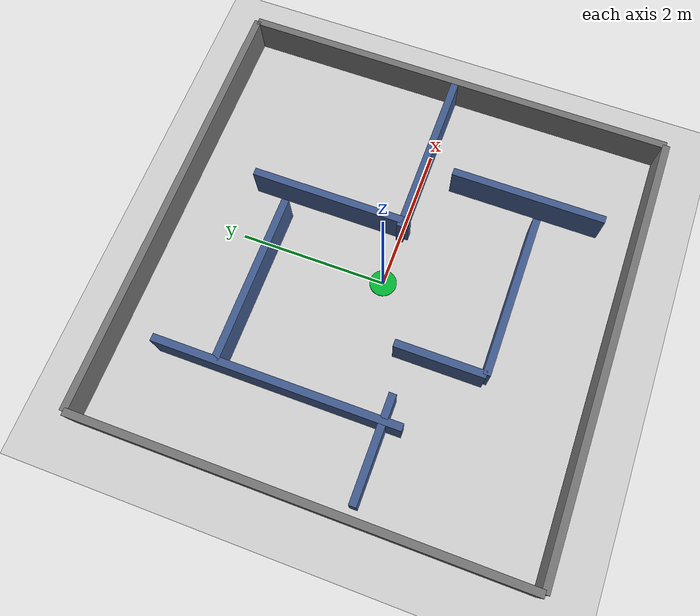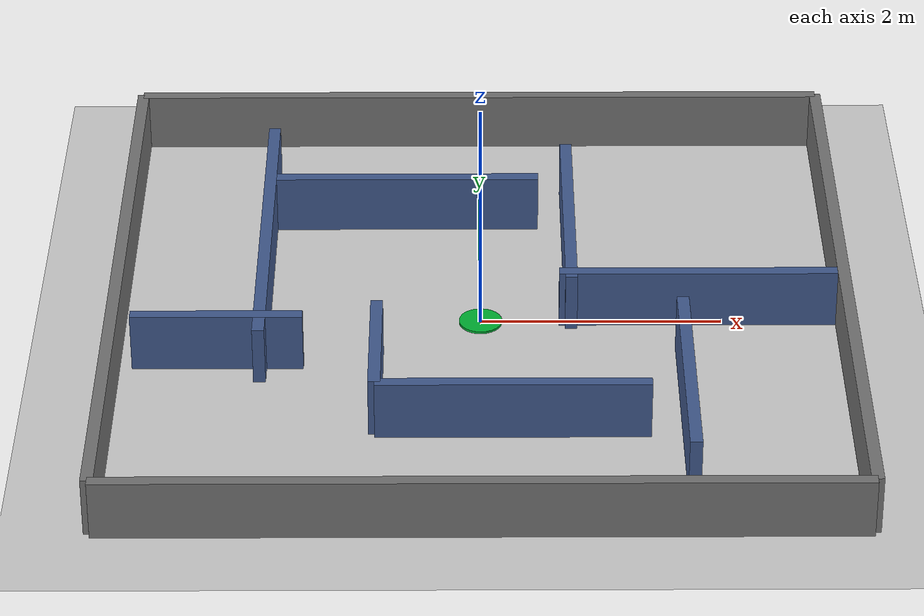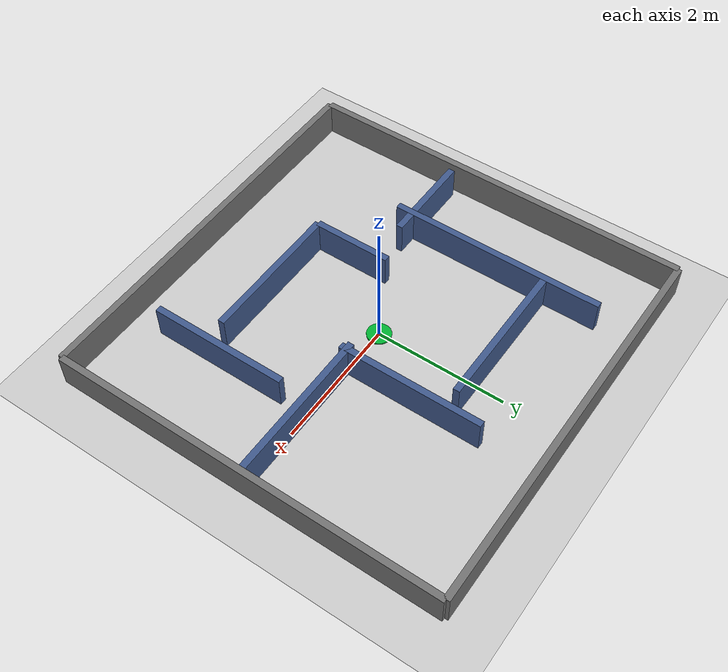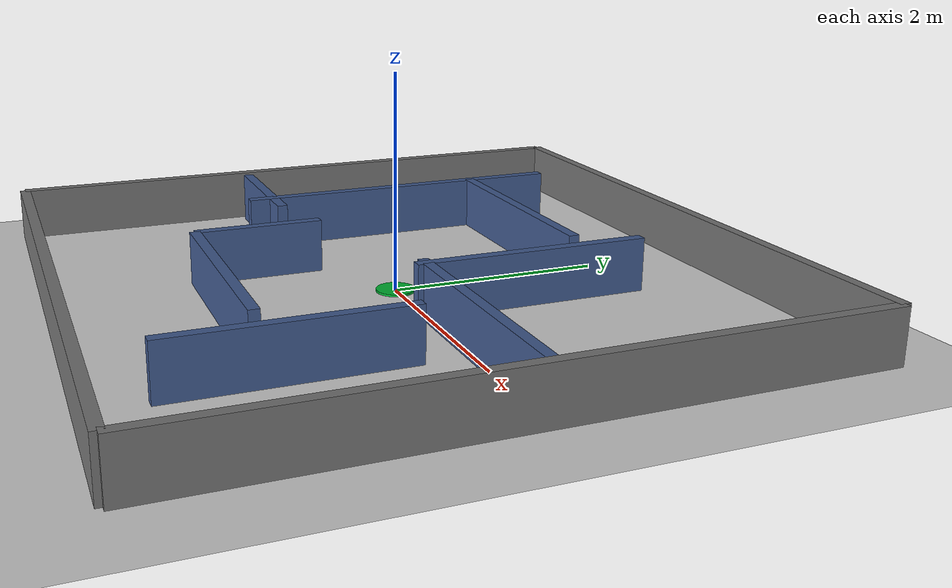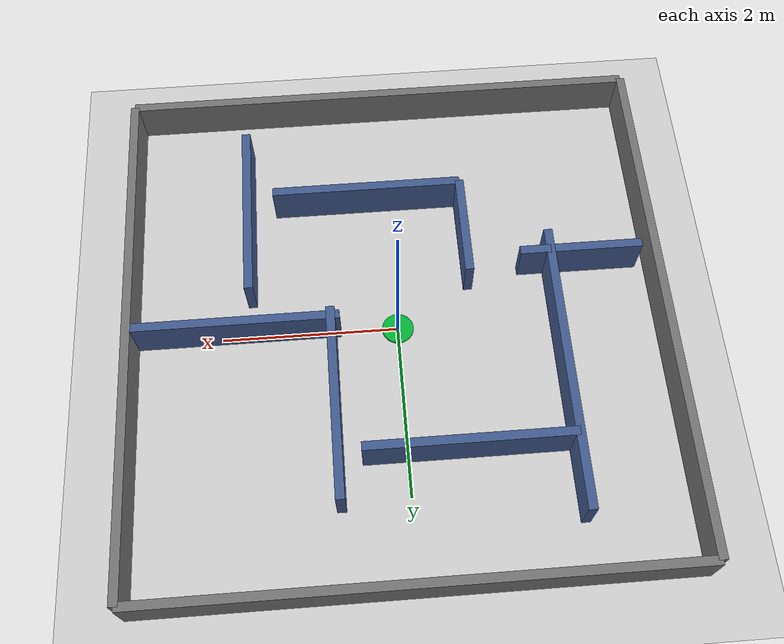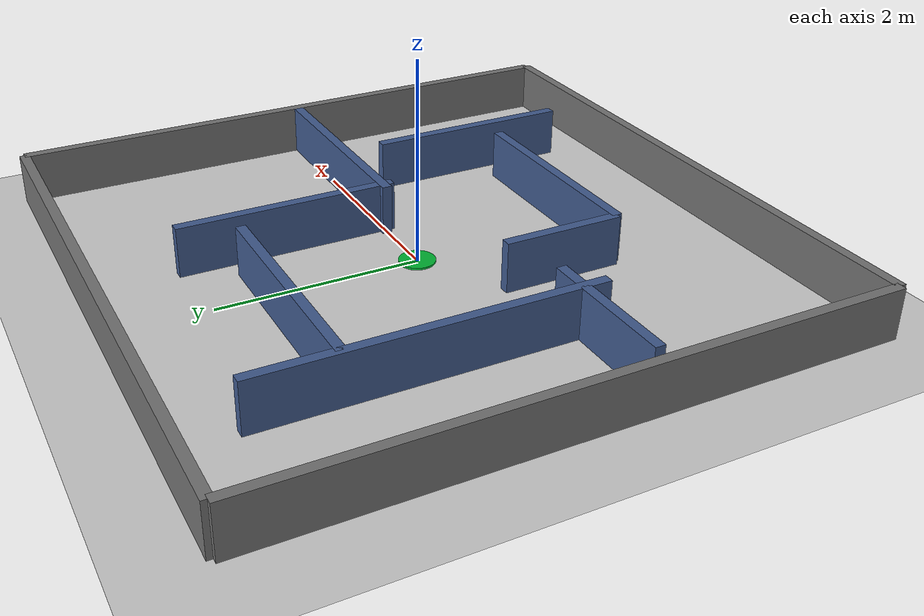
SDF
<?xml version="1.0"?>
<sdf version="1.6">
  <world name="simple_maze_world">
    <physics type="ode">
      <max_step_size>0.001</max_step_size>
      <real_time_factor>1</real_time_factor>
    </physics>

    <include><uri>model://ground_plane</uri></include>
    <include><uri>model://sun</uri></include>

    <model name="simple_maze">
      <static>true</static>
      <pose>0 0 0 0 0 0</pose>

      <!-- Outer boundary: 6m x 6m -->
      <link name="north_wall">
        <pose>0 3.0 0.25 0 0 0</pose>
        <collision name="collision">
          <geometry><box><size>6.0 0.1 0.5</size></box></geometry>
        </collision>
        <visual name="visual">
          <geometry><box><size>6.0 0.1 0.5</size></box></geometry>
          <material><ambient>0.45 0.45 0.45 1</ambient></material>
        </visual>
      </link>

      <link name="south_wall">
        <pose>0 -3.0 0.25 0 0 0</pose>
        <collision name="collision">
          <geometry><box><size>6.0 0.1 0.5</size></box></geometry>
        </collision>
        <visual name="visual">
          <geometry><box><size>6.0 0.1 0.5</size></box></geometry>
          <material><ambient>0.45 0.45 0.45 1</ambient></material>
        </visual>
      </link>

      <link name="east_wall">
        <pose>3.0 0 0.25 0 0 0</pose>
        <collision name="collision">
          <geometry><box><size>0.1 6.0 0.5</size></box></geometry>
        </collision>
        <visual name="visual">
          <geometry><box><size>0.1 6.0 0.5</size></box></geometry>
          <material><ambient>0.45 0.45 0.45 1</ambient></material>
        </visual>
      </link>

      <link name="west_wall">
        <pose>-3.0 0 0.25 0 0 0</pose>
        <collision name="collision">
          <geometry><box><size>0.1 6.0 0.5</size></box></geometry>
        </collision>
        <visual name="visual">
          <geometry><box><size>0.1 6.0 0.5</size></box></geometry>
          <material><ambient>0.45 0.45 0.45 1</ambient></material>
        </visual>
      </link>

      <!-- Interior maze walls. Corridors are kept wide for the TurtleBot model. -->
      <link name="maze_wall_1">
        <pose>-1.8 0.75 0.25 0 0 0</pose>
        <collision name="collision">
          <geometry><box><size>0.1 3.3 0.5</size></box></geometry>
        </collision>
        <visual name="visual">
          <geometry><box><size>0.1 3.3 0.5</size></box></geometry>
          <material><ambient>0.25 0.35 0.55 1</ambient></material>
        </visual>
      </link>

      <link name="maze_wall_2">
        <pose>-0.65 1.55 0.25 0 0 0</pose>
        <collision name="collision">
          <geometry><box><size>2.3 0.1 0.5</size></box></geometry>
        </collision>
        <visual name="visual">
          <geometry><box><size>2.3 0.1 0.5</size></box></geometry>
          <material><ambient>0.25 0.35 0.55 1</ambient></material>
        </visual>
      </link>

      <link name="maze_wall_3">
        <pose>0.75 1.0 0.25 0 0 0</pose>
        <collision name="collision">
          <geometry><box><size>0.1 2.2 0.5</size></box></geometry>
        </collision>
        <visual name="visual">
          <geometry><box><size>0.1 2.2 0.5</size></box></geometry>
          <material><ambient>0.25 0.35 0.55 1</ambient></material>
        </visual>
      </link>

      <link name="maze_wall_4">
        <pose>1.8 0.0 0.25 0 0 0</pose>
        <collision name="collision">
          <geometry><box><size>2.3 0.1 0.5</size></box></geometry>
        </collision>
        <visual name="visual">
          <geometry><box><size>2.3 0.1 0.5</size></box></geometry>
          <material><ambient>0.25 0.35 0.55 1</ambient></material>
        </visual>
      </link>

      <link name="maze_wall_5">
        <pose>1.65 -1.45 0.25 0 0 0</pose>
        <collision name="collision">
          <geometry><box><size>0.1 2.1 0.5</size></box></geometry>
        </collision>
        <visual name="visual">
          <geometry><box><size>0.1 2.1 0.5</size></box></geometry>
          <material><ambient>0.25 0.35 0.55 1</ambient></material>
        </visual>
      </link>

      <link name="maze_wall_6">
        <pose>0.25 -1.65 0.25 0 0 0</pose>
        <collision name="collision">
          <geometry><box><size>2.2 0.1 0.5</size></box></geometry>
        </collision>
        <visual name="visual">
          <geometry><box><size>2.2 0.1 0.5</size></box></geometry>
          <material><ambient>0.25 0.35 0.55 1</ambient></material>
        </visual>
      </link>

      <link name="maze_wall_7">
        <pose>-0.85 -1.05 0.25 0 0 0</pose>
        <collision name="collision">
          <geometry><box><size>0.1 1.2 0.5</size></box></geometry>
        </collision>
        <visual name="visual">
          <geometry><box><size>0.1 1.2 0.5</size></box></geometry>
          <material><ambient>0.25 0.35 0.55 1</ambient></material>
        </visual>
      </link>

      <link name="maze_wall_8">
        <pose>-2.15 -0.65 0.25 0 0 0</pose>
        <collision name="collision">
          <geometry><box><size>1.4 0.1 0.5</size></box></geometry>
        </collision>
        <visual name="visual">
          <geometry><box><size>1.4 0.1 0.5</size></box></geometry>
          <material><ambient>0.25 0.35 0.55 1</ambient></material>
        </visual>
      </link>
    </model>

    <model name="start_marker">
      <static>true</static>
      <pose>0 0 0.01 0 0 0</pose>
      <link name="link">
        <visual name="visual">
          <geometry><cylinder><radius>0.18</radius><length>0.02</length></cylinder></geometry>
          <material><ambient>0.0 0.7 0.2 1</ambient></material>
        </visual>
      </link>
    </model>
  </world>
</sdf>
